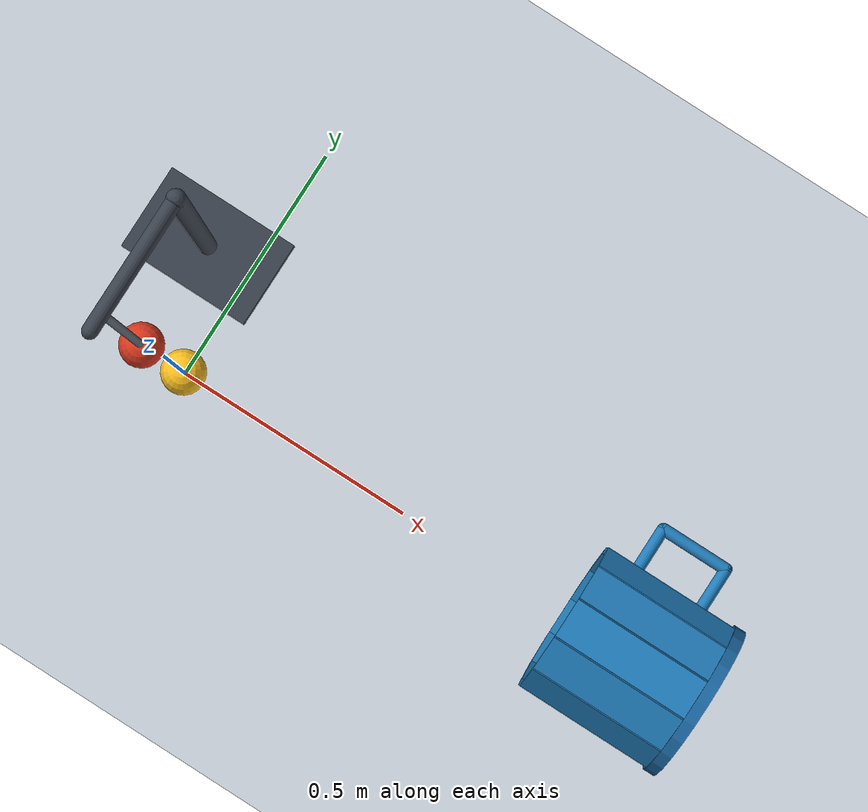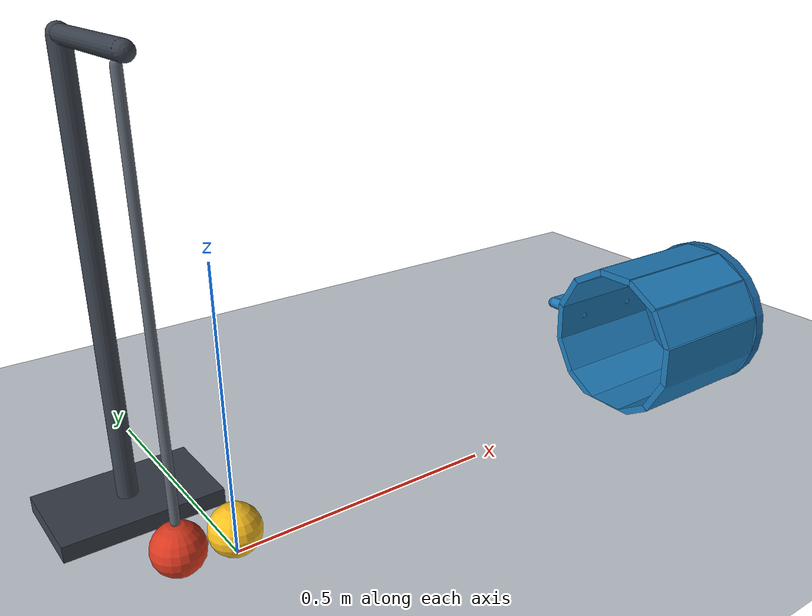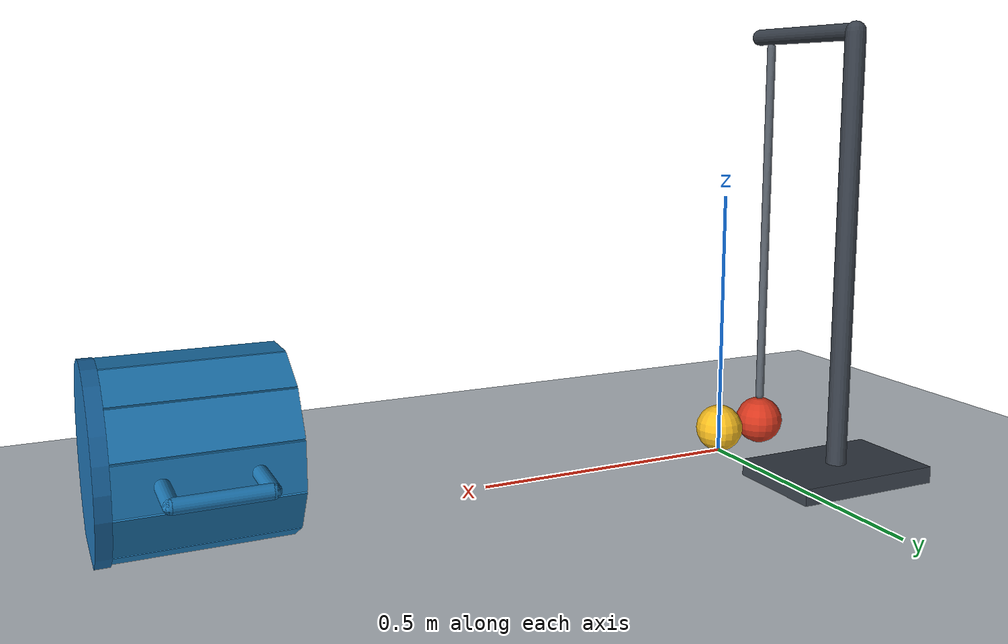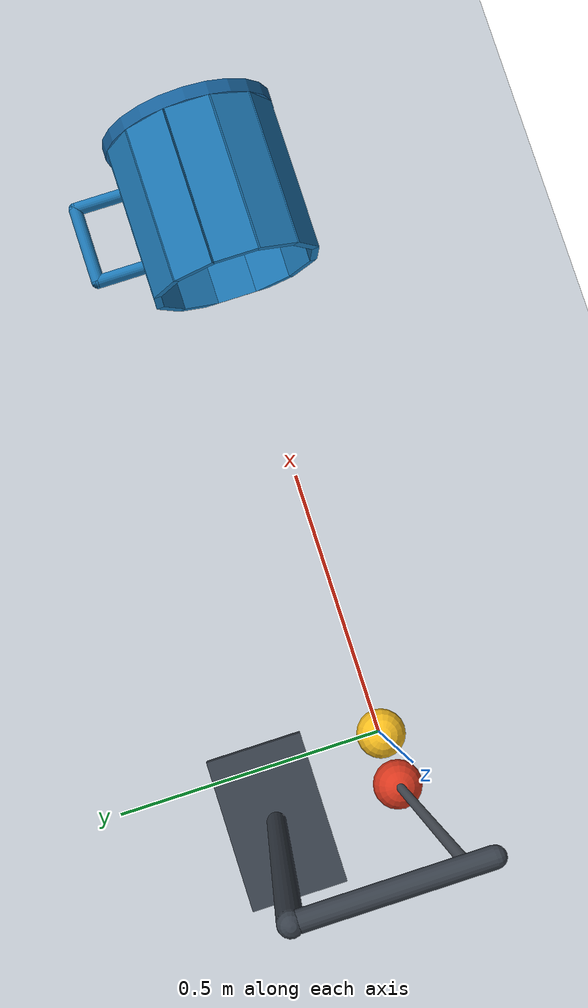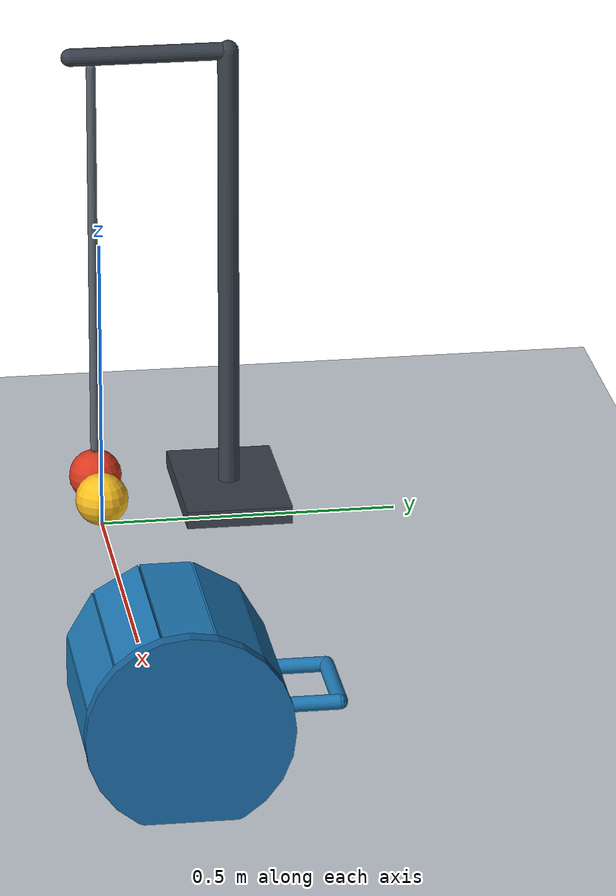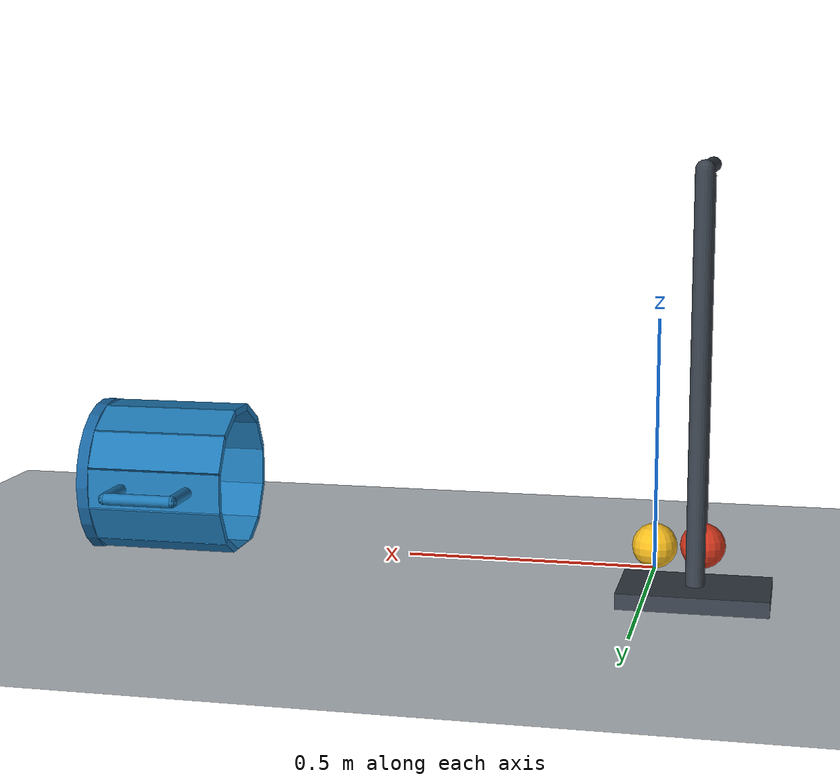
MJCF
<mujoco model="pendulum_ball_and_cup">
  <compiler angle="degree" autolimits="true"/>
  <option timestep="0.002" gravity="0 0 -9.81" integrator="implicitfast" solver="Newton" iterations="100" tolerance="1e-10" cone="elliptic"/>
  <size njmax="300" nconmax="100"/>

  <visual>
    <headlight ambient="0.35 0.35 0.35" diffuse="0.7 0.7 0.7" specular="0.2 0.2 0.2"/>
  </visual>

  <worldbody>
    <light name="overhead_light" pos="0.5 -1 3" dir="0 0 -1" diffuse="0.8 0.8 0.8"/>
    <camera name="overview" pos="0.45 -2.5 1.5" xyaxes="1 0 0 0 0.403 0.915"/>

    <geom name="floor" type="plane" size="3 2 0.1" friction="0.45 0.001 0.0002" condim="6" solref="0.008 1" solimp="0.95 0.99 0.001" rgba="0.78 0.81 0.84 1"/>

    <body name="pendulum_stand" pos="-0.095 0 0">
      <geom name="stand_base" type="box" pos="0 0.23 0.015" size="0.14 0.09 0.015" rgba="0.22 0.25 0.29 1"/>
      <geom name="stand_post" type="capsule" fromto="0 0.23 0.03 0 0.23 0.8" size="0.018" rgba="0.22 0.25 0.29 1"/>
      <geom name="stand_crossbar" type="capsule" fromto="0 0.23 0.8 0 -0.035 0.8" size="0.015" contype="0" conaffinity="0" rgba="0.22 0.25 0.29 1"/>
    </body>

    <body name="pendulum" pos="-0.095 0 0.8">
      <joint name="pendulum_hinge" type="hinge" axis="0 1 0" range="-60 60" damping="0.006"/>
      <geom name="pendulum_rod" type="capsule" fromto="0 0 -0.02 0 0 -0.70" size="0.008" mass="0.025" contype="0" conaffinity="0" rgba="0.35 0.38 0.42 1"/>
      <geom name="pendulum_bob" type="sphere" pos="0 0 -0.75" size="0.045" mass="0.8" friction="0.45 0.001 0.0002" condim="6" solref="0.008 1" solimp="0.95 0.99 0.001" rgba="0.85 0.22 0.12 1"/>
    </body>

    <body name="ball" pos="0 0 0.045">
      <freejoint name="ball_free"/>
      <geom name="ball" type="sphere" size="0.045" mass="0.07" friction="0.45 0.001 0.0002" condim="6" solref="0.008 1" solimp="0.95 0.99 0.001" rgba="0.98 0.75 0.12 1"/>
    </body>

    <body name="cup" pos="1 0 0">
      <geom name="cup_wall_00" type="box" pos="0 0 0.287" size="0.14 0.0395 0.007" euler="0 0 0" friction="0.55 0.004 0.001" condim="6" solref="0.008 1" rgba="0.12 0.48 0.72 1"/>
      <geom name="cup_wall_01" type="box" pos="0 -0.0735 0.267306" size="0.14 0.0395 0.007" euler="30 0 0" friction="0.55 0.004 0.001" condim="6" solref="0.008 1" rgba="0.12 0.48 0.72 1"/>
      <geom name="cup_wall_02" type="box" pos="0 -0.127306 0.2135" size="0.14 0.0395 0.007" euler="60 0 0" friction="0.55 0.004 0.001" condim="6" solref="0.008 1" rgba="0.12 0.48 0.72 1"/>
      <geom name="cup_wall_03" type="box" pos="0 -0.147 0.14" size="0.14 0.0395 0.007" euler="90 0 0" friction="0.55 0.004 0.001" condim="6" solref="0.008 1" rgba="0.12 0.48 0.72 1"/>
      <geom name="cup_wall_04" type="box" pos="0 -0.127306 0.0665" size="0.14 0.0395 0.007" euler="120 0 0" friction="0.55 0.004 0.001" condim="6" solref="0.008 1" rgba="0.12 0.48 0.72 1"/>
      <geom name="cup_wall_05" type="box" pos="0 -0.0735 0.012694" size="0.14 0.0395 0.007" euler="150 0 0" friction="0.55 0.004 0.001" condim="6" solref="0.008 1" rgba="0.12 0.48 0.72 1"/>
      <geom name="cup_wall_06" type="box" pos="0 0 -0.007" size="0.14 0.0395 0.007" euler="180 0 0" contype="0" conaffinity="0" rgba="0.12 0.48 0.72 1"/>
      <geom name="cup_wall_07" type="box" pos="0 0.0735 0.012694" size="0.14 0.0395 0.007" euler="210 0 0" friction="0.55 0.004 0.001" condim="6" solref="0.008 1" rgba="0.12 0.48 0.72 1"/>
      <geom name="cup_wall_08" type="box" pos="0 0.127306 0.0665" size="0.14 0.0395 0.007" euler="240 0 0" friction="0.55 0.004 0.001" condim="6" solref="0.008 1" rgba="0.12 0.48 0.72 1"/>
      <geom name="cup_wall_09" type="box" pos="0 0.147 0.14" size="0.14 0.0395 0.007" euler="270 0 0" friction="0.55 0.004 0.001" condim="6" solref="0.008 1" rgba="0.12 0.48 0.72 1"/>
      <geom name="cup_wall_10" type="box" pos="0 0.127306 0.2135" size="0.14 0.0395 0.007" euler="300 0 0" friction="0.55 0.004 0.001" condim="6" solref="0.008 1" rgba="0.12 0.48 0.72 1"/>
      <geom name="cup_wall_11" type="box" pos="0 0.0735 0.267306" size="0.14 0.0395 0.007" euler="330 0 0" friction="0.55 0.004 0.001" condim="6" solref="0.008 1" rgba="0.12 0.48 0.72 1"/>

      <geom name="cup_closed_base" type="cylinder" pos="0.152 0 0.14" size="0.16 0.012" euler="0 90 0" friction="0.55 0.004 0.001" condim="6" solref="0.008 1" solimp="0.95 0.99 0.001" rgba="0.10 0.40 0.63 1"/>

      <geom name="cup_handle_front" type="capsule" fromto="-0.07 0.15 0.14 -0.07 0.24 0.14" size="0.012" rgba="0.12 0.48 0.72 1"/>
      <geom name="cup_handle_outer" type="capsule" fromto="-0.07 0.24 0.14 0.07 0.24 0.14" size="0.012" rgba="0.12 0.48 0.72 1"/>
      <geom name="cup_handle_back" type="capsule" fromto="0.07 0.24 0.14 0.07 0.15 0.14" size="0.012" rgba="0.12 0.48 0.72 1"/>
    </body>
  </worldbody>

  <keyframe>
    <key name="start" qpos="0.40 0 0 0.045 1 0 0 0" qvel="0 0 0 0 0 0 0"/>
  </keyframe>
</mujoco>
